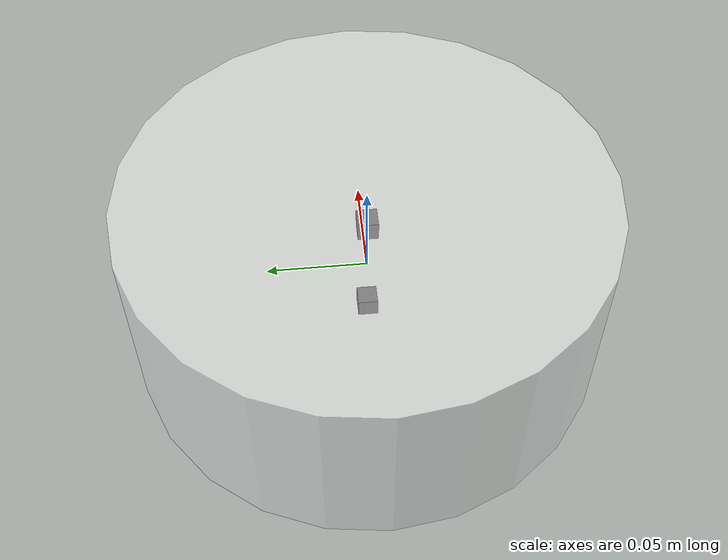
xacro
<robot xmlns:xacro="http://ros.org/wiki/xacro" name="first_robot">

    <xacro:macro name="base_link" params="length radius">
        <!-- 机器人的身体部分 -->
        <link name="base_link">
            <!--部件外观描述-->
            <visual>
                <!-- 沿着自己几何中心的偏移和旋转量 -->
                <origin xyz="0 0 0" rpy="0 0 0"/>
                <!-- 几何形状 -->
                <geometry>
                <!-- 圆柱体 半径 长度 -->
                    <cylinder length="${length}" radius="${radius}"/>
                </geometry>
                <!-- 材质颜色 -->
                <material name="white">
                    <color rgba="1.0 1.0 1.0 0.5"/>
                </material>
            </visual>
        </link>
    </xacro:macro>

    <xacro:macro name="imu_link" params="imu_name xyz">
            <!-- 机器人的IMU部件，惯性测量传感器 -->
        <link name="${imu_name}">
            <visual>
                <origin xyz="0 0 0" rpy="0 0 0"/>
                <geometry>
                    <box size="0.01 0.01 0.01"/>
                </geometry>
                <material name="black">
                    <color rgba="0.0 0.0 0.0 1.0"/>
                </material>
            </visual>
        </link>

        <!-- 机器人的关节,用于组成 -->
        <joint name="${imu_name}_joint" type="fixed">
            <parent link="base_link"/>
            <child link="${imu_name}"/>
            <origin xyz="${xyz}" rpy="0 0 0"/>
        </joint>
    </xacro:macro>

    <xacro:base_link length="0.10" radius="0.12"/>
    <xacro:imu_link imu_name="imu_up_link" xyz="0 0 0.03"/>
    <xacro:imu_link imu_name="imu_down_link" xyz="0 0 -0.03"/>

</robot>
